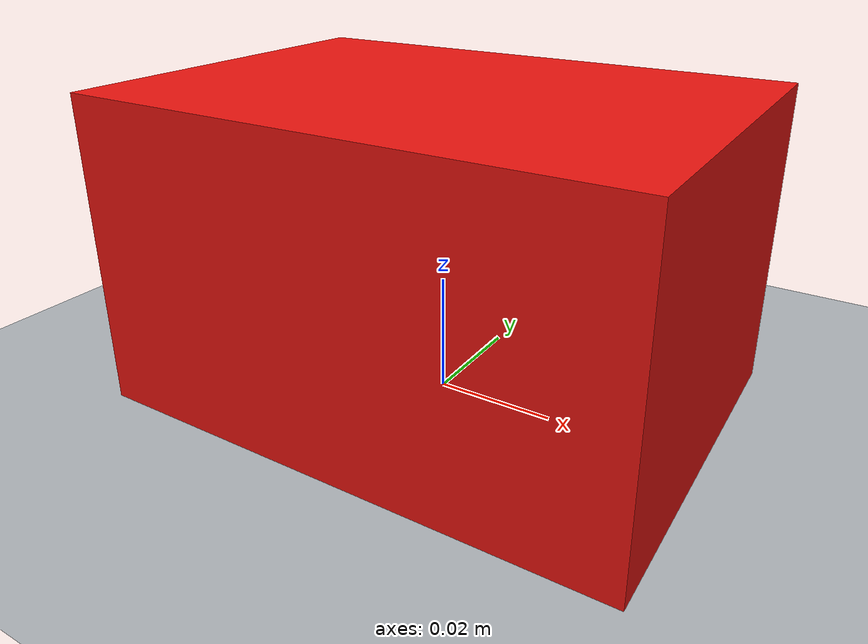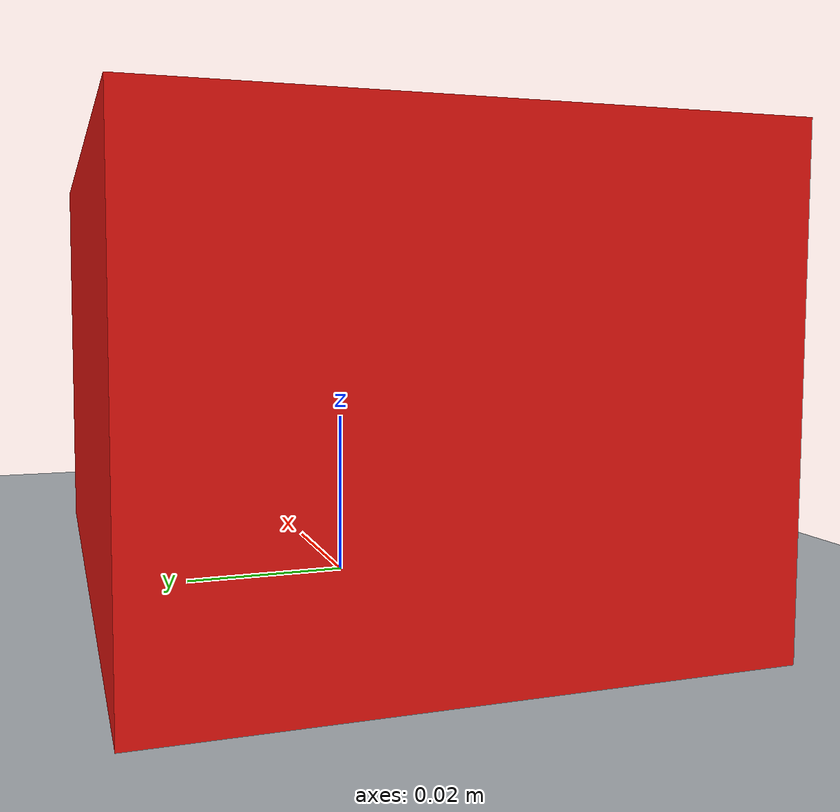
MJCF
<?xml version="1.0" encoding="UTF-8"?>
<mujoco model="M1 RGB camera probe">
  <compiler angle="radian" autolimits="true"/>
  <option timestep="0.002" gravity="0 0 -9.81" integrator="implicitfast"/>
  <visual>
    <global offwidth="640" offheight="480"/>
  </visual>
  <worldbody>
    <light name="key" pos="0.1 -0.2 1.4" dir="-0.05 0.1 -1" diffuse="0.9 0.9 0.9"/>
    <geom name="table" type="plane" size="1 1 0.1" rgba="0.68 0.70 0.72 1" friction="0.8 0.01 0.001"/>
    <body name="red_object" pos="0 0 0.026">
      <freejoint name="object_free"/>
      <geom name="red_block" type="box" size="0.045 0.032 0.026" mass="0.06" rgba="0.92 0.08 0.06 1"/>
    </body>
    <camera name="overhead" pos="0 0 1.1" xyaxes="1 0 0 0 1 0" fovy="48"/>
  </worldbody>
</mujoco>
